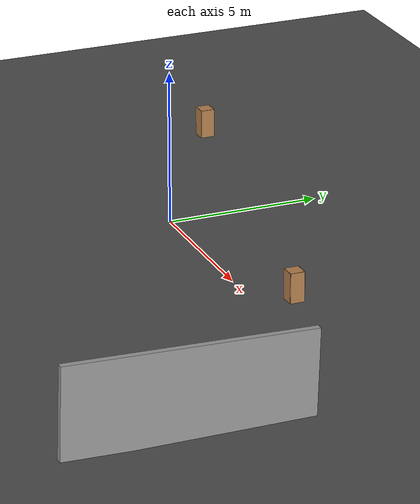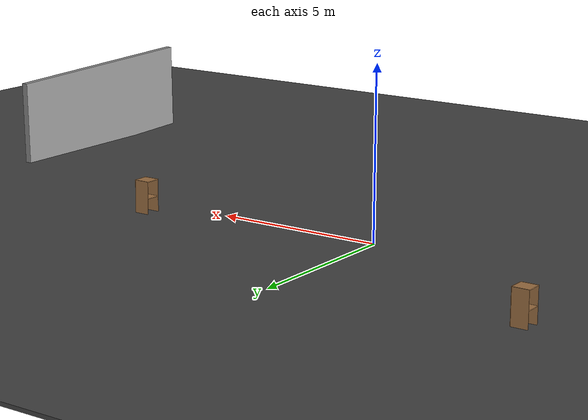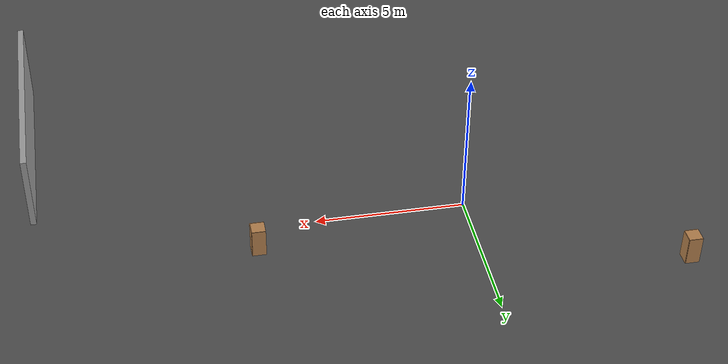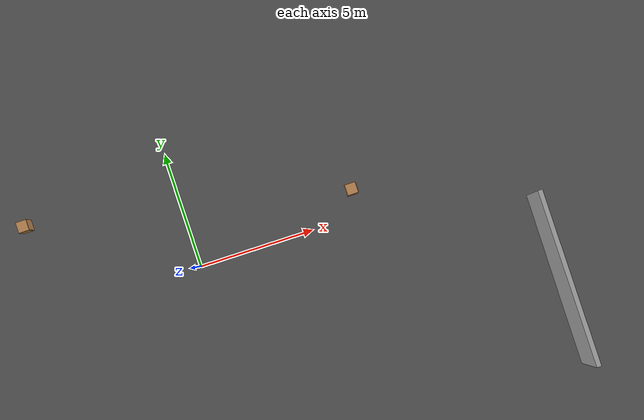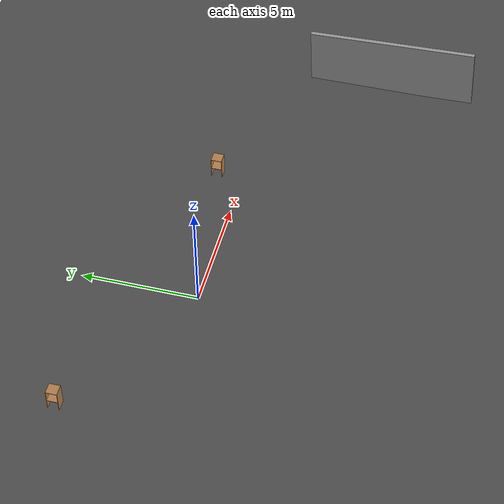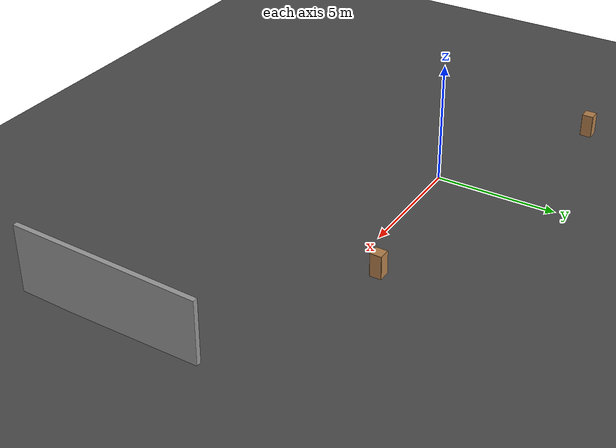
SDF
<sdf version="1.6">
 <world name="default">
  <light name="sun" type="directional">
   <pose>0 0 10 0 -0 0</pose>
   <diffuse>0.8 0.8 0.8 1</diffuse>
   <specular>0.1 0.1 0.1 1</specular>
   <attenuation>
    <range>1000</range>
    <constant>0.9</constant>
    <linear>0.01</linear>
    <quadratic>0.001</quadratic>
   </attenuation>
   <direction>-0.5 0.5 -1</direction>
  </light>
  <model name="ground_plane">
   <static>1</static>
   <link name="link">
    <collision name="collision">
     <geometry><plane><normal>0 0 1</normal><size>100 100</size></plane></geometry>
     <surface><friction><ode><mu>100</mu><mu2>50</mu2></ode></friction></surface>
    </collision>
    <visual name="visual">
     <cast_shadows>0</cast_shadows>
     <geometry><plane><normal>0 0 1</normal><size>100 100</size></plane></geometry>
     <material>
      <script><uri>file://media/materials/scripts/gazebo.material</uri><name>Gazebo/Grey</name></script>
     </material>
    </visual>
   </link>
  </model>
  <gravity>0 0 -9.8</gravity>
  <magnetic_field>6e-06 2.3e-05 -4.2e-05</magnetic_field>
  <atmosphere type="adiabatic"/>
  <physics name="default_physics" default="0" type="ode">
   <max_step_size>0.001</max_step_size>
   <real_time_factor>1</real_time_factor>
   <real_time_update_rate>1000</real_time_update_rate>
  </physics>
  <scene><ambient>0.4 0.4 0.4 1</ambient><background>0.7 0.7 0.7 1</background><shadows>1</shadows></scene>
  <spherical_coordinates>
   <surface_model>EARTH_WGS84</surface_model>
   <latitude_deg>0</latitude_deg>
   <longitude_deg>0</longitude_deg>
   <elevation>0</elevation>
   <heading_deg>0</heading_deg>
  </spherical_coordinates>
  <model name="asphalt_plane">
   <static>1</static>
   <link name="link">
    <collision name="collision"><geometry><box><size>103.73 100.394 0.1</size></box></geometry></collision>
    <visual name="visual">
     <cast_shadows>0</cast_shadows>
     <geometry><box><size>103.73 100.394 0.1</size></box></geometry>
     <material>
      <script>
       <uri>model://asphalt_plane/materials/scripts</uri>
       <uri>model://asphalt_plane/materials/textures</uri>
       <name>vrc/asphalt</name>
      </script>
     </material>
    </visual>
   </link>
   <pose>-0.312475 0.085689 0 0 -0 0</pose>
  </model>
  <model name="cabinet">
   <static>1</static>
   <link name="cabinet_bottom_plate">
    <inertial>
     <pose>0 0 -1 0 -0 0</pose>
     <inertia><ixx>2.05</ixx><ixy>0</ixy><ixz>0</ixz><iyy>2.05</iyy><iyz>0</iyz><izz>2.05</izz></inertia>
     <mass>25</mass>
    </inertial>
    <collision name="cabinet_bottom_plate_geom">
     <pose>0 0 0.01 0 -0 0</pose>
     <geometry><box><size>0.45 0.45 0.02</size></box></geometry>
    </collision>
    <visual name="cabinet_bottom_plate_geom_visual">
     <pose>0 0 0.01 0 -0 0</pose>
     <geometry><box><size>0.45 0.45 0.02</size></box></geometry>
     <material>
      <script><uri>file://media/materials/scripts/gazebo.material</uri><name>Gazebo/Wood</name></script>
     </material>
    </visual>
    <collision name="cabinet_bottom_plate_geom_cabinet_back_plate">
     <pose>0.235 0 0.51 0 -0 0</pose>
     <geometry><box><size>0.02 0.45 1.02</size></box></geometry>
    </collision>
    <visual name="cabinet_bottom_plate_geom_cabinet_back_plate_visual">
     <pose>0.235 0 0.51 0 -0 0</pose>
     <geometry><box><size>0.02 0.45 1.02</size></box></geometry>
     <material>
      <script><uri>file://media/materials/scripts/gazebo.material</uri><name>Gazebo/Wood</name></script>
     </material>
    </visual>
    <collision name="cabinet_bottom_plate_geom_cabinet_left_plate">
     <pose>0 0.235 0.51 0 -0 0</pose>
     <geometry><box><size>0.45 0.02 1.02</size></box></geometry>
    </collision>
    <visual name="cabinet_bottom_plate_geom_cabinet_left_plate_visual">
     <pose>0 0.235 0.51 0 -0 0</pose>
     <geometry><box><size>0.45 0.02 1.02</size></box></geometry>
     <material>
      <script><uri>file://media/materials/scripts/gazebo.material</uri><name>Gazebo/Wood</name></script>
     </material>
    </visual>
    <collision name="cabinet_bottom_plate_geom_cabinet_middle_plate">
     <pose>0 0 0.51 0 -0 0</pose>
     <geometry><box><size>0.45 0.45 0.02</size></box></geometry>
    </collision>
    <visual name="cabinet_bottom_plate_geom_cabinet_middle_plate_visual">
     <pose>0 0 0.51 0 -0 0</pose>
     <geometry><box><size>0.45 0.45 0.02</size></box></geometry>
     <material>
      <script><uri>file://media/materials/scripts/gazebo.material</uri><name>Gazebo/Wood</name></script>
     </material>
    </visual>
    <collision name="cabinet_bottom_plate_geom_cabinet_right_plate">
     <pose>0 -0.235 0.51 0 -0 0</pose>
     <geometry><box><size>0.45 0.02 1.02</size></box></geometry>
    </collision>
    <visual name="cabinet_bottom_plate_geom_cabinet_right_plate_visual">
     <pose>0 -0.235 0.51 0 -0 0</pose>
     <geometry><box><size>0.45 0.02 1.02</size></box></geometry>
     <material>
      <script><uri>file://media/materials/scripts/gazebo.material</uri><name>Gazebo/Wood</name></script>
     </material>
    </visual>
    <collision name="cabinet_bottom_plate_geom_cabinet_top_plate">
     <pose>0 0 1.01 0 -0 0</pose>
     <geometry><box><size>0.45 0.45 0.02</size></box></geometry>
    </collision>
    <visual name="cabinet_bottom_plate_geom_cabinet_top_plate_visual">
     <pose>0 0 1.01 0 -0 0</pose>
     <geometry><box><size>0.45 0.45 0.02</size></box></geometry>
     <material>
      <script><uri>file://media/materials/scripts/gazebo.material</uri><name>Gazebo/Wood</name></script>
     </material>
    </visual>
   </link>
   <pose>7.05651 1.12921 0 0 -0 0</pose>
  </model>
  <model name="grey_wall">
   <static>1</static>
   <link name="link">
    <pose>0 0 1.4 0 -0 0</pose>
    <collision name="collision"><geometry><box><size>7.5 0.2 2.8</size></box></geometry></collision>
    <visual name="visual">
     <cast_shadows>0</cast_shadows>
     <geometry><box><size>7.5 0.2 2.8</size></box></geometry>
     <material>
      <script>
       <uri>model://grey_wall/materials/scripts</uri>
       <uri>model://grey_wall/materials/textures</uri>
       <name>vrc/grey_wall</name>
      </script>
     </material>
    </visual>
   </link>
   <pose>14.2015 -5.18863 0 3.2e-05 0.03066 1.57184</pose>
  </model>
  <model name="cabinet_0">
   <static>1</static>
   <link name="cabinet_bottom_plate">
    <inertial>
     <pose>0 0 -1 0 -0 0</pose>
     <inertia><ixx>2.05</ixx><ixy>0</ixy><ixz>0</ixz><iyy>2.05</iyy><iyz>0</iyz><izz>2.05</izz></inertia>
     <mass>25</mass>
    </inertial>
    <collision name="cabinet_bottom_plate_geom">
     <pose>0 0 0.01 0 -0 0</pose>
     <geometry><box><size>0.45 0.45 0.02</size></box></geometry>
    </collision>
    <visual name="cabinet_bottom_plate_geom_visual">
     <pose>0 0 0.01 0 -0 0</pose>
     <geometry><box><size>0.45 0.45 0.02</size></box></geometry>
     <material>
      <script><uri>file://media/materials/scripts/gazebo.material</uri><name>Gazebo/Wood</name></script>
     </material>
    </visual>
    <collision name="cabinet_bottom_plate_geom_cabinet_back_plate">
     <pose>0.235 0 0.51 0 -0 0</pose>
     <geometry><box><size>0.02 0.45 1.02</size></box></geometry>
    </collision>
    <visual name="cabinet_bottom_plate_geom_cabinet_back_plate_visual">
     <pose>0.235 0 0.51 0 -0 0</pose>
     <geometry><box><size>0.02 0.45 1.02</size></box></geometry>
     <material>
      <script><uri>file://media/materials/scripts/gazebo.material</uri><name>Gazebo/Wood</name></script>
     </material>
    </visual>
    <collision name="cabinet_bottom_plate_geom_cabinet_left_plate">
     <pose>0 0.235 0.51 0 -0 0</pose>
     <geometry><box><size>0.45 0.02 1.02</size></box></geometry>
    </collision>
    <visual name="cabinet_bottom_plate_geom_cabinet_left_plate_visual">
     <pose>0 0.235 0.51 0 -0 0</pose>
     <geometry><box><size>0.45 0.02 1.02</size></box></geometry>
     <material>
      <script><uri>file://media/materials/scripts/gazebo.material</uri><name>Gazebo/Wood</name></script>
     </material>
    </visual>
    <collision name="cabinet_bottom_plate_geom_cabinet_middle_plate">
     <pose>0 0 0.51 0 -0 0</pose>
     <geometry><box><size>0.45 0.45 0.02</size></box></geometry>
    </collision>
    <visual name="cabinet_bottom_plate_geom_cabinet_middle_plate_visual">
     <pose>0 0 0.51 0 -0 0</pose>
     <geometry><box><size>0.45 0.45 0.02</size></box></geometry>
     <material>
      <script><uri>file://media/materials/scripts/gazebo.material</uri><name>Gazebo/Wood</name></script>
     </material>
    </visual>
    <collision name="cabinet_bottom_plate_geom_cabinet_right_plate">
     <pose>0 -0.235 0.51 0 -0 0</pose>
     <geometry><box><size>0.45 0.02 1.02</size></box></geometry>
    </collision>
    <visual name="cabinet_bottom_plate_geom_cabinet_right_plate_visual">
     <pose>0 -0.235 0.51 0 -0 0</pose>
     <geometry><box><size>0.45 0.02 1.02</size></box></geometry>
     <material>
      <script><uri>file://media/materials/scripts/gazebo.material</uri><name>Gazebo/Wood</name></script>
     </material>
    </visual>
    <collision name="cabinet_bottom_plate_geom_cabinet_top_plate">
     <pose>0 0 1.01 0 -0 0</pose>
     <geometry><box><size>0.45 0.45 0.02</size></box></geometry>
    </collision>
    <visual name="cabinet_bottom_plate_geom_cabinet_top_plate_visual">
     <pose>0 0 1.01 0 -0 0</pose>
     <geometry><box><size>0.45 0.45 0.02</size></box></geometry>
     <material>
      <script><uri>file://media/materials/scripts/gazebo.material</uri><name>Gazebo/Wood</name></script>
     </material>
    </visual>
   </link>
   <pose>-6.50617 3.91165 0 0 -0 0</pose>
  </model>
 </world>
</sdf>
